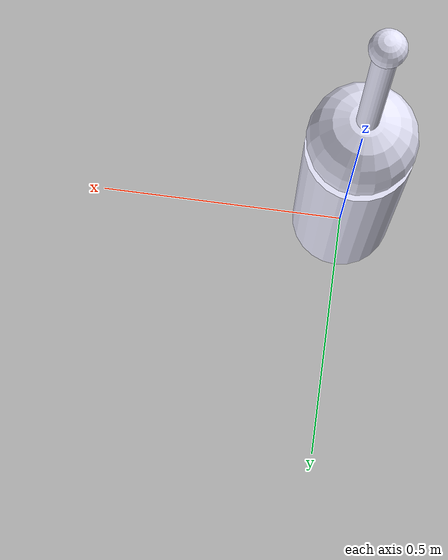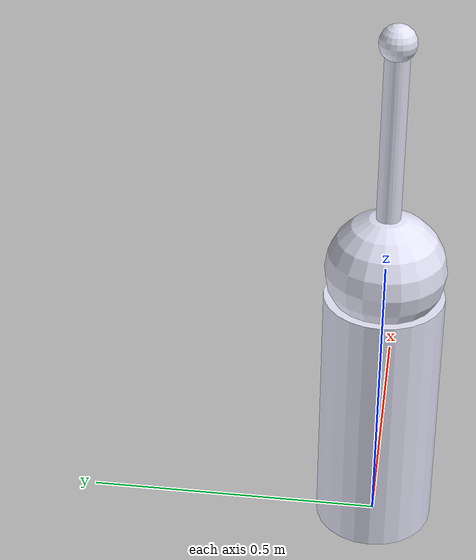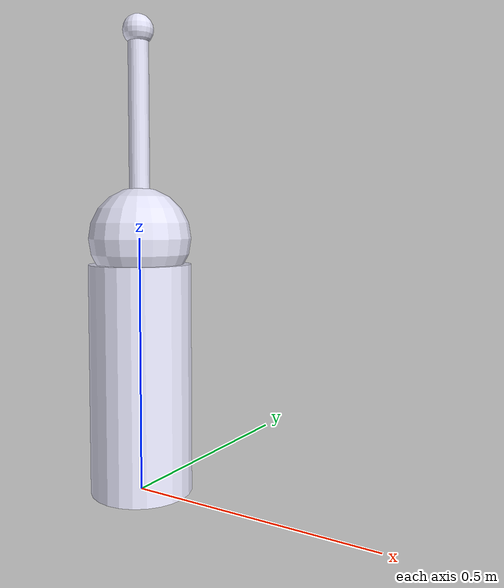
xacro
<?xml version="1.0"?>
<robot xmlns:xacro="http://www.ros.org/wiki/xacro" name="manipulator_robot">
    <xacro:arg name="initial_positions_file" default="initial_positions.yaml" />

    <!-- Import manipulator_robot urdf file -->
    <xacro:include filename="$(find manipulator_project)/urdf/manipulator_model.urdf.xacro" />

    <!-- Import control_xacro -->
    <xacro:include filename="manipulator_robot.ros2_control.xacro" />

    <xacro:manipulator_robot_ros2_control name="FakeSystem" initial_positions_file="$(arg initial_positions_file)"/>

</robot>

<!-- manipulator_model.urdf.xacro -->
<robot name="manipulator_robot" xmlns:xacro="http://www.ros.org/wiki/xacro">

      <!-- Define custom colors for visualization -->
    <material name="blue">
        <color rgba="0.2 0.2 1 0.7"/>
    </material>
    <material name="black">
        <color rgba="0 0 0 0.95"/>
    </material>
    <material name="red">
        <color rgba="1 0 0 0.95"/>
    </material>

    <material name="silver">
        <color rgba="0.9 0.9 0.98 1.0"/>
    </material>

    <!-- Fixed link 'world' to represent a fixed world frame -->
    <link name="world"/>

    <!--
      Joint 1: Revolute (world -> base_link)
      Limits: -180° to 180° (i.e., -π to π)
    -->
    <joint name="world_to_base_joint" type="revolute">
        <parent link="world"/>
        <child link="base_link"/>
        <origin xyz="0 0 0" rpy="0 0 0"/>
        <axis xyz="0 0 1"/>
        <limit lower="${-pi}" upper="${pi}" effort="10" velocity="1.0"/>
    </joint>

    <!-- Base link -->
    <link name="base_link">
        <inertial>
            <origin xyz="0 0 0.225" rpy="0 0 0"/>
            <mass value="1.0"/>
        <inertia
                    ixx="0.0174375"
                    ixy="0.0"
                    ixz="0.0"
                    iyy="0.0174375"
                    iyz="0.0"
                    izz="0.005"/>
        </inertial>
        <visual>
            <origin xyz="0 0 0.225" rpy="0 0 0"/>
            <geometry>
                <cylinder length="0.45" radius="0.1"/>
            </geometry>
            <material name="silver"/>
        </visual>
        <collision>
            <origin xyz="0 0 0.225" rpy="0 0 0"/>
            <geometry>
                <cylinder length="0.45" radius="0.1"/>
            </geometry>
        </collision>
        <!-- added sphere just for visualization purposes, didn't add collision for this one -->
        <visual>
            <material name="silver"/>
            <origin xyz="0 0 0.5" rpy="0 0 0"/>
            <geometry>
                <sphere radius="0.1"/>
            </geometry>
        </visual>
    </link>

    <!--
      Joint 2: Revolute (base_link -> link1)
      Limits: -90° to 90° (-π/2 to π/2)
    -->
    <joint name="base_link_to_link1_joint" type="revolute">
        <parent link="base_link"/>
        <child link="link1"/>
        <origin xyz="0 0 0.55" rpy="0 0 0"/>
        <axis xyz="0 1 0"/>
        <limit lower="${-pi / 2.0}" upper="${pi / 2.0}" effort="10" velocity="1.0"/>
    </joint>

    <!--  Link1 -->
    <link name="link1">
        <inertial>
            <origin xyz="0 0 0.2" rpy="0 0 0"/>
            <mass value="0.5"/>
            <inertia ixx="0.0067167"
                    ixy="0.0"
                    ixz="0.0"
                    iyy="0.0067167"
                    iyz="0.0"
                    izz="0.0002"/>
        </inertial>
        <visual>
            <origin xyz="0 0 0.15" rpy="0 0 0"/>
            <geometry>
                <cylinder length="0.4" radius="0.02"/>
            </geometry>
            <material name="silver"/>
        </visual>
        <collision>
            <origin xyz="0 0 0.15" rpy="0 0 0"/>
            <geometry>
                <cylinder length="0.4" radius="0.02"/>
            </geometry>
        </collision>

        <inertial>
            <origin xyz="0 0 0" rpy="0 0 0"/>
            <mass value="0.5"/>
        <inertia        ixx="0.001979"
                        ixy="0.0"
                        ixz="0.0"
                        iyy="0.001979"
                        iyz="0.0"
                        izz="0.000625"/>
        </inertial>
        <!-- added sphere just for visualization purposes, didn't add collision for this one -->
        <visual>
            <material name="silver"/>
            <origin xyz="0 0 0.35" rpy="0 0 0"/>
            <geometry>
                <sphere radius="0.03"/>
            </geometry>
        </visual>

    </link>
</robot>
